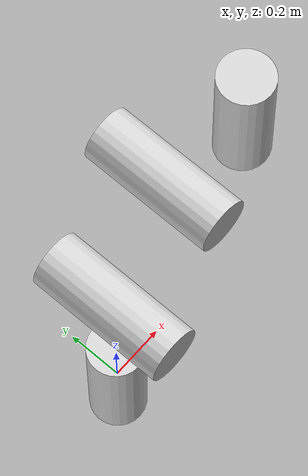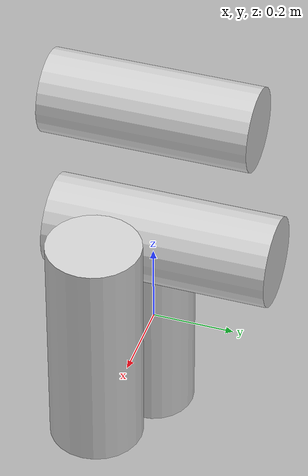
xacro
<?xml version="1.0"?>

  <!-- UNIMATE Puma 560 Manipulator -->
  <robot name="puma560" xmlns:xacro="http://www.ros.org/wiki/xacro">

  <!-- Constants for robot dimensions -->
  <xacro:property name="Pi" value="3.1415926535897931"/>

  <!-- DH parameters for frame modeling -->
  <!-- DH parameter for base to link 1 -->
  <xacro:property name="alpha1" value="${Pi/2}"/>
  <xacro:property name="d1" value="${0.54864 + 0.07493}"/>
  <xacro:property name="a1" value="0"/>

  <!-- DH parameter for link 1 to link 2 -->
  <xacro:property name="alpha2" value="0"/>
  <xacro:property name="d2" value="-${0.14224 + 0.0254}"/>
  <xacro:property name="a2" value="${0.432}"/>

  <!-- DH parameter for link 2 to link 3 -->
  <xacro:property name="alpha3" value="-${Pi/2}"/>
  <xacro:property name="d3" value="${0.0381}"/>
  <xacro:property name="a3" value="${0.35179}"/>

  <!-- Import Rviz colors -->
  <xacro:include filename="$(find puma560_description)/urdf/materials.xacro" />

  <!-- Link definitions -->
  <link name="world"/>

  <link name="puma_base">
    <visual>
     <origin xyz="0 0 0" rpy="0 0 0" />
     <geometry>
      <cylinder length="0.5" radius="0.1"/>
     </geometry>
     <material name="metal"/>
  </visual>
</link>

<link name="puma_link_1">
  <visual>
   <origin xyz="0 0 0" rpy="0 0 0" />
   <geometry>
    <cylinder length="0.5" radius="0.1"/>
   </geometry>
   <material name="metal"/>
 </visual>
</link>

<link name="puma_link_2">
  <visual>
   <origin xyz="0 0 0" rpy="0 0 0" />
   <geometry>
    <cylinder length="0.5" radius="0.1"/>
   </geometry>
   <material name="metal"/>
 </visual>
</link>

<link name="puma_link_3">
  <visual>
   <origin xyz="0 0 0" rpy="0 0 0" />
   <geometry>
    <cylinder length="0.5" radius="0.1"/>
   </geometry>
   <material name="metal"/>
 </visual>
</link>

<!-- Joint definitions -->

<joint name="puma_base_to_link_1" type="continuous">
  <parent link="world"/>
  <child link="puma_base"/>
  <origin xyz="0 0 0" rpy="0 0 0" />
  <axis xyz="0 0 1" />
</joint>

<joint name="link_1_to_link_2" type="continuous">
  <parent link="puma_base"/>
  <child link="puma_link_1"/>
  <origin xyz="0 0 ${d1}" rpy="${alpha1} 0 0" />
  <axis xyz="0 0 1" />
</joint>

<joint name="link_2_to_link_3" type="continuous">
  <parent link="puma_link_1"/>
  <child link="puma_link_2"/>
  <origin xyz="${a2} 0 ${d2}" rpy="${alpha2} 0 0" />
  <axis xyz="0 0 1" />
</joint>

<joint name="end_effector" type="fixed">
  <parent link="puma_link_2"/>
  <child link="puma_link_3"/>
  <origin xyz="${a3} 0 ${d3}" rpy="${alpha3} 0 0" />
  <axis xyz="0 0 1" />
</joint>

</robot>

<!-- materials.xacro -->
<robot>

	<material name="black">
		<color rgba="0.0 0.0 0.0 1.0"/>
	</material>

	<material name="blue">
		<color rgba="0.0 0.0 0.8 1.0"/>
	</material>

	<material name="green">
		<color rgba="0.0 0.8 0.0 1.0"/>
	</material>

	<material name="grey">
		<color rgba="0.2 0.2 0.2 1.0"/>
	</material>

	<material name="red">
		<color rgba="0.8 0.0 0.0 1.0"/>
	</material>

	<material name="red_transparent">
		<color rgba="0.8 0.0 0.0 0.5"/>
	</material>

	<material name="white">
		<color rgba="1.0 1.0 1.0 1.0"/>
	</material>

	<material name="orange">
		<color rgba="${255/255} ${108/255} ${10/255} 1.0"/>
	</material>

	<material name="brown">
		<color rgba="${222/255} ${207/255} ${195/255} 1.0"/>
	</material>

	<material name="metal">
		<color rgba="${211/255} ${211/255} ${211/255} 1.0" />
	</material>

	<material name="wood">
		<color rgba="${205/255} ${133/255} ${63/255} 1.0" />
	</material>

</robot>
